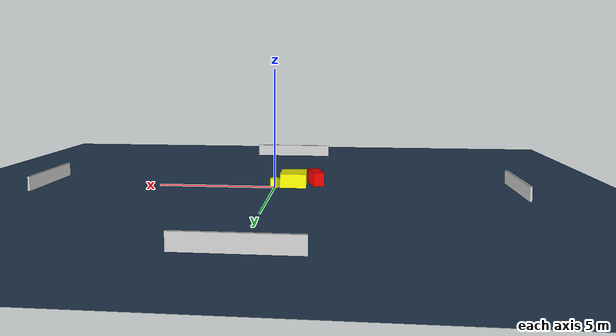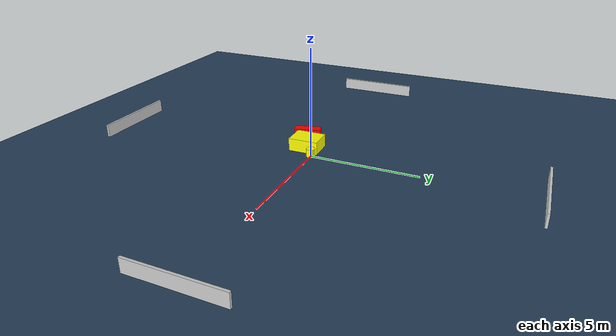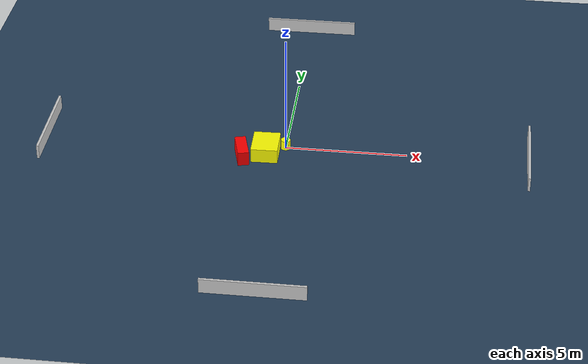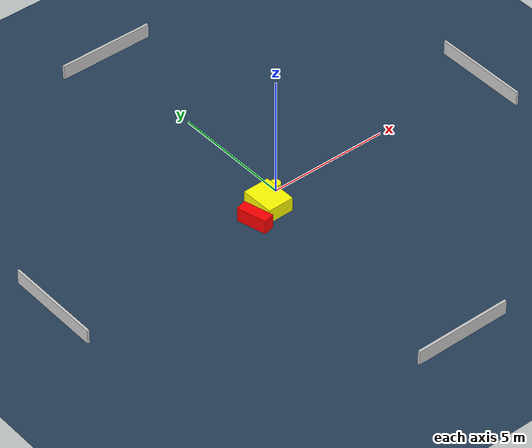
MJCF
<?xml version="1.0" ?>
<mujoco model="generated_environment">
  <option timestep="0.01" integrator="RK4" cone="elliptic"/>
  <default>
    <geom density="1"/>
  </default>
  <asset>
    <texture builtin="gradient" height="3072" name="skybox" rgb1="0.3 0.5 0.7" rgb2="0 0 0" type="skybox" width="512"/>
    <texture builtin="checker" height="300" name="groundplane" rgb1="0.2 0.3 0.4" rgb2="0.1 0.2 0.3" type="2d" width="300"/>
    <material name="groundplane" reflectance="0.2" texrepeat="5 5" texture="groundplane"/>
  </asset>
  <worldbody>
    <light dir="0 0 -1" directional="true" pos="0 0 1.5"/>
    <geom condim="3" friction="0.5 0.005 0.001" material="groundplane" name="floor" pos="0 0 0" size="0 0 0.05" type="plane"/>
    <body name="walls">
      <geom name="wall_1" condim="4" pos="-10.0 0.0 0.3" rgba="0.800000011920929 0.800000011920929 0.800000011920929 1.0" size="0.05 2.0 0.3" type="box"/>
      <geom name="wall_2" condim="4" pos="10.0 0.0 0.3" rgba="0.800000011920929 0.800000011920929 0.800000011920929 1.0" size="0.05 2.0 0.3" type="box"/>
      <geom name="wall_3" condim="4" pos="0.0 -10.0 0.3" rgba="0.800000011920929 0.800000011920929 0.800000011920929 1.0" size="2.0 0.05 0.3" type="box"/>
      <geom name="wall_4" condim="4" pos="0.0 10.0 0.3" rgba="0.800000011920929 0.800000011920929 0.800000011920929 1.0" size="2.0 0.05 0.3" type="box"/>
    </body>
    <body name="robot">
      <joint name="joint_x" type="slide" pos="0 0 0" axis="1 0 0"/>
      <joint name="joint_y" type="slide" pos="0 0 0" axis="0 1 0"/>
      <geom name="robot" type="cylinder" pos="0.0 0.0 0.2" size="0.2 0.2 0.0" mass="5.0" friction="1.0 0.005 0.0001" condim="4" rgba="1.0 1.0 0.0 1.0"/>
    </body>
    <body name="obstacle_1_movable">
      <geom name="obstacle_1_movable" condim="4" pos="-0.7672484604359376 -0.516002788967351 0.3" euler="0 0 271.0691865990306" friction="0.0 0.005 0.001" rgba="1.0 1.0 0.0 1.0" size="0.692297983993499 0.5507350671223772 0.3" type="box" mass="0.1"/>
      <joint type="free"/>
    </body>
    <body name="obstacle_2_static">
      <geom name="obstacle_2_static" condim="4" pos="-1.7092511373726338 -0.9019368782676516 0.3" euler="0 0 14.383728312710083" friction="0.0 0.005 0.001" rgba="1.0 0.0 0.0 1.0" size="0.2307404678351274 0.6226562204640506 0.3" type="box"/>
    </body>
  </worldbody>
  <actuator>
    <motor name="actuator_x" joint="joint_x" gear="1" ctrlrange="-1 1"/>
    <motor name="actuator_y" joint="joint_y" gear="1" ctrlrange="-1 1"/>
  </actuator>
</mujoco>
